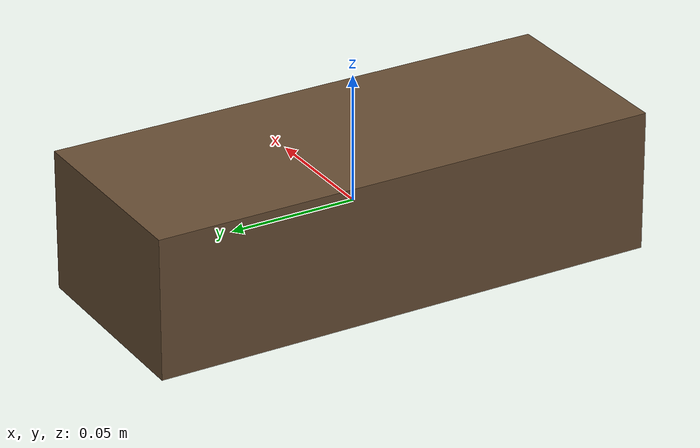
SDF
<?xml version="1.0"?>
<sdf version="1.6">
  <model name="table">
    <static>true</static>
    <link name="link">
      <collision name="collision"><geometry><box><size>0.08 0.20 0.055</size></box></geometry></collision>
      <visual name="visual">
        <geometry><box><size>0.08 0.20 0.055</size></box></geometry>
        <material><ambient>0.4 0.3 0.2 1</ambient><diffuse>0.4 0.3 0.2 1</diffuse></material>
      </visual>
    </link>
  </model>
</sdf>
